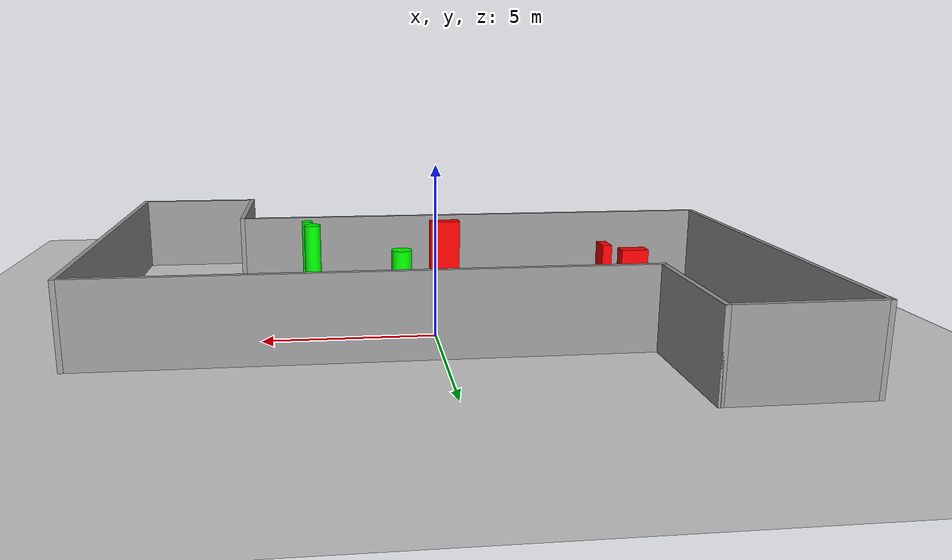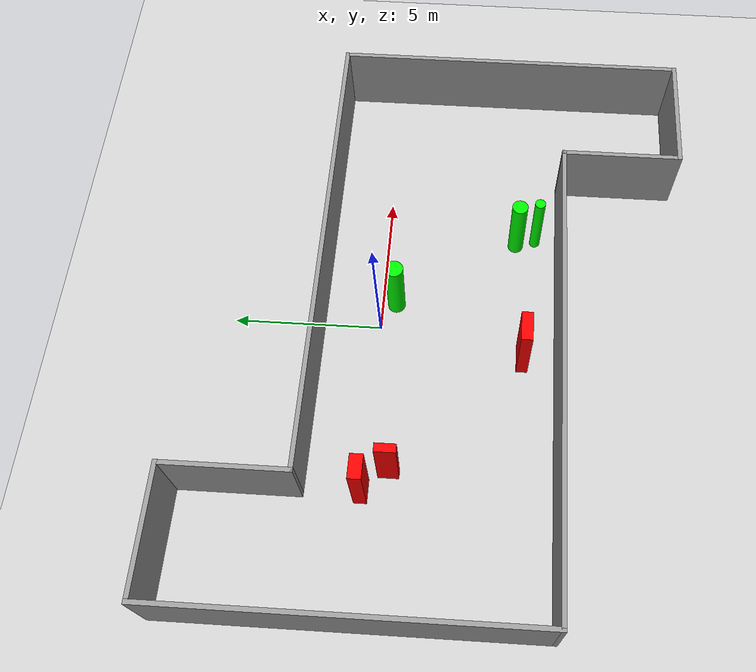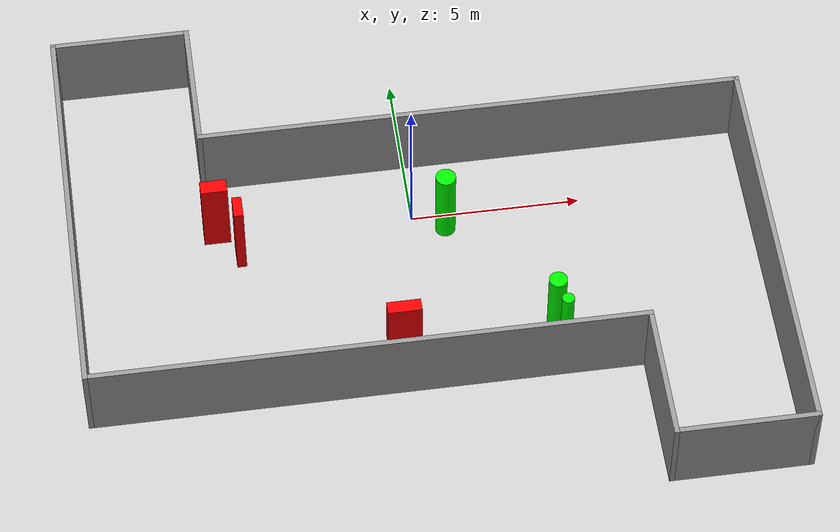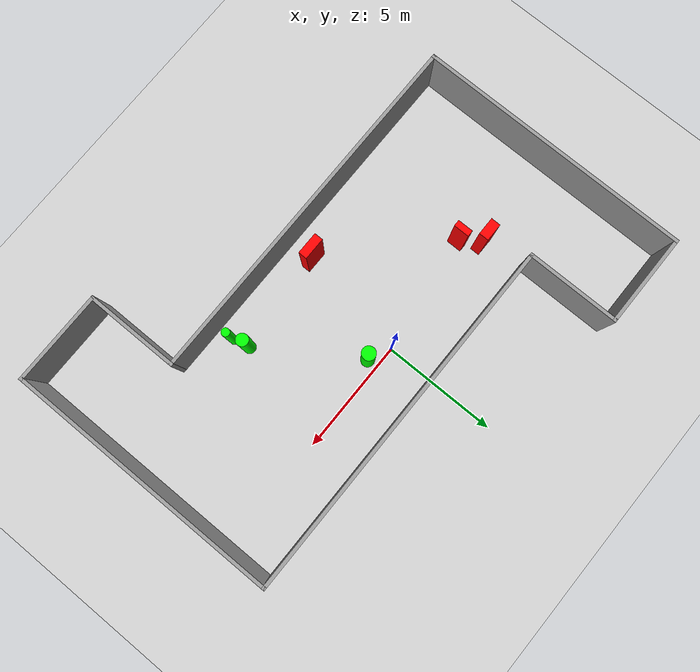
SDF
<sdf version="1.7">
 <world name="default">
  <light name="sun" type="directional">
   <pose>0 0 10 0 -0 0</pose>
   <diffuse>0.8 0.8 0.8 1</diffuse>
   <specular>0.2 0.2 0.2 1</specular>
   <attenuation>
    <range>1000</range>
    <constant>0.9</constant>
    <linear>0.01</linear>
    <quadratic>0.001</quadratic>
   </attenuation>
   <direction>-0.5 0.1 -0.9</direction>
   <spot><inner_angle>0</inner_angle><outer_angle>0</outer_angle><falloff>0</falloff></spot>
  </light>
  <model name="ground_plane">
   <static>1</static>
   <link name="link">
    <collision name="collision">
     <geometry><plane><normal>0 0 1</normal><size>100 100</size></plane></geometry>
     <surface>
      <contact><collide_bitmask>65535</collide_bitmask></contact>
      <friction><ode><mu>100</mu><mu2>50</mu2></ode></friction>
     </surface>
    </collision>
    <visual name="visual">
     <cast_shadows>0</cast_shadows>
     <geometry><plane><normal>0 0 1</normal><size>100 100</size></plane></geometry>
     <material>
      <script><uri>file://media/materials/scripts/gazebo.material</uri><name>Gazebo/Grey</name></script>
     </material>
    </visual>
   </link>
  </model>
  <gravity>0 0 -9.8</gravity>
  <magnetic_field>6e-06 2.3e-05 -4.2e-05</magnetic_field>
  <atmosphere type="adiabatic"/>
  <physics type="ode">
   <max_step_size>0.001</max_step_size>
   <real_time_factor>1</real_time_factor>
   <real_time_update_rate>1000</real_time_update_rate>
  </physics>
  <scene><ambient>0.4 0.4 0.4 1</ambient><background>0.7 0.7 0.7 1</background><shadows>1</shadows></scene>
  <spherical_coordinates>
   <surface_model>EARTH_WGS84</surface_model>
   <latitude_deg>0</latitude_deg>
   <longitude_deg>0</longitude_deg>
   <elevation>0</elevation>
   <heading_deg>0</heading_deg>
  </spherical_coordinates>
  <model name="my_base_walls">
   <link name="Wall_13">
    <collision name="Wall_13_Collision">
     <geometry><box><size>12.15 0.15 2.5</size></box></geometry>
     <pose>0 0 1.25 0 -0 0</pose>
    </collision>
    <visual name="Wall_13_Visual">
     <pose>0 0 1.25 0 -0 0</pose>
     <geometry><box><size>12.15 0.15 2.5</size></box></geometry>
     <material>
      <script><uri>file://media/materials/scripts/gazebo.material</uri><name>Gazebo/Grey</name></script>
      <ambient>1 1 1 1</ambient>
     </material>
     <meta><layer>0</layer></meta>
    </visual>
    <pose>10 -2 0 0 -0 1.5708</pose>
   </link>
   <link name="Wall_15">
    <collision name="Wall_15_Collision">
     <geometry><box><size>16.15 0.15 2.5</size></box></geometry>
     <pose>0 0 1.25 0 -0 0</pose>
    </collision>
    <visual name="Wall_15_Visual">
     <pose>0 0 1.25 0 -0 0</pose>
     <geometry><box><size>16.15 0.15 2.5</size></box></geometry>
     <material>
      <script><uri>file://media/materials/scripts/gazebo.material</uri><name>Gazebo/Grey</name></script>
      <ambient>1 1 1 1</ambient>
     </material>
     <meta><layer>0</layer></meta>
    </visual>
    <pose>2 4 0 0 -0 3.14159</pose>
   </link>
   <link name="Wall_17">
    <collision name="Wall_17_Collision">
     <geometry><box><size>4.15 0.15 2.5</size></box></geometry>
     <pose>0 0 1.25 0 -0 0</pose>
    </collision>
    <visual name="Wall_17_Visual">
     <pose>0 0 1.25 0 -0 0</pose>
     <geometry><box><size>4.15 0.15 2.5</size></box></geometry>
     <material>
      <script><uri>file://media/materials/scripts/gazebo.material</uri><name>Gazebo/Grey</name></script>
      <ambient>1 1 1 1</ambient>
     </material>
     <meta><layer>0</layer></meta>
    </visual>
    <pose>6 -6 0 0 -0 -1.5708</pose>
   </link>
   <link name="Wall_19">
    <collision name="Wall_19_Collision">
     <geometry><box><size>12.15 0.15 2.5</size></box></geometry>
     <pose>0 0 1.25 0 -0 0</pose>
    </collision>
    <visual name="Wall_19_Visual">
     <pose>0 0 1.25 0 -0 0</pose>
     <geometry><box><size>12.15 0.15 2.5</size></box></geometry>
     <material>
      <script><uri>file://media/materials/scripts/gazebo.material</uri><name>Gazebo/Grey</name></script>
      <ambient>1 1 1 1</ambient>
     </material>
     <meta><layer>0</layer></meta>
    </visual>
    <pose>-10 2 0 0 -0 1.5708</pose>
   </link>
   <link name="Wall_21">
    <collision name="Wall_21_Collision">
     <geometry><box><size>4.15 0.15 2.5</size></box></geometry>
     <pose>0 0 1.25 0 -0 0</pose>
    </collision>
    <visual name="Wall_21_Visual">
     <pose>0 0 1.25 0 -0 0</pose>
     <geometry><box><size>4.15 0.15 2.5</size></box></geometry>
     <material>
      <script><uri>file://media/materials/scripts/gazebo.material</uri><name>Gazebo/Grey</name></script>
      <ambient>1 1 1 1</ambient>
     </material>
     <meta><layer>0</layer></meta>
    </visual>
    <pose>-8 8 0 0 -0 0</pose>
   </link>
   <link name="Wall_23">
    <collision name="Wall_23_Collision">
     <geometry><box><size>4.15 0.15 2.5</size></box></geometry>
     <pose>0 0 1.25 0 -0 0</pose>
    </collision>
    <visual name="Wall_23_Visual">
     <pose>0 0 1.25 0 -0 0</pose>
     <geometry><box><size>4.15 0.15 2.5</size></box></geometry>
     <material>
      <script><uri>file://media/materials/scripts/gazebo.material</uri><name>Gazebo/Grey</name></script>
      <ambient>1 1 1 1</ambient>
     </material>
     <meta><layer>0</layer></meta>
    </visual>
    <pose>-6 6 0 0 -0 -1.5708</pose>
   </link>
   <link name="Wall_25">
    <collision name="Wall_25_Collision">
     <geometry><box><size>4.15 0.15 2.5</size></box></geometry>
     <pose>0 0 1.25 0 -0 0</pose>
    </collision>
    <visual name="Wall_25_Visual">
     <pose>0 0 1.25 0 -0 0</pose>
     <geometry><box><size>4.15 0.15 2.5</size></box></geometry>
     <material>
      <script><uri>file://media/materials/scripts/gazebo.material</uri><name>Gazebo/Grey</name></script>
      <ambient>1 1 1 1</ambient>
     </material>
     <meta><layer>0</layer></meta>
    </visual>
    <pose>8 -8 0 0 -0 0</pose>
   </link>
   <link name="Wall_9">
    <collision name="Wall_9_Collision">
     <geometry><box><size>16.15 0.15 2.5</size></box></geometry>
     <pose>0 0 1.25 0 -0 0</pose>
    </collision>
    <visual name="Wall_9_Visual">
     <pose>0 0 1.25 0 -0 0</pose>
     <geometry><box><size>16.15 0.15 2.5</size></box></geometry>
     <material>
      <script><uri>file://media/materials/scripts/gazebo.material</uri><name>Gazebo/Grey</name></script>
      <ambient>1 1 1 1</ambient>
     </material>
     <meta><layer>0</layer></meta>
    </visual>
    <pose>-2 -4 0 0 -0 3.14159</pose>
   </link>
   <static>1</static>
   <pose>-0 -2 0 0 -0 0</pose>
  </model>
  <model name="cylinder1">
   <static>1</static>
   <link name="link">
    <inertial>
     <mass>1</mass>
     <inertia><ixx>0.5</ixx><ixy>0</ixy><ixz>0</ixz><iyy>0.5</iyy><iyz>0</iyz><izz>1</izz></inertia>
    </inertial>
    <collision name="collision">
     <geometry><cylinder><radius>0.26535359061442065</radius><length>2.5</length></cylinder></geometry>
    </collision>
    <visual name="visual">
     <geometry><cylinder><radius>0.26535359061442065</radius><length>2.5</length></cylinder></geometry>
     <material>
      <ambient>0 1 0 1</ambient>
      <diffuse>0 1 0 1</diffuse>
      <specular>0.1 0.1 0.1 1</specular>
      <emissive>0 0 0 0</emissive>
     </material>
    </visual>
   </link>
   <pose>3.5961823124980796 -4.516716477466756 1.25 0 0 0</pose>
  </model>
  <model name="cylinder2">
   <static>1</static>
   <link name="link">
    <inertial>
     <mass>1</mass>
     <inertia><ixx>0.5</ixx><ixy>0</ixy><ixz>0</ixz><iyy>0.5</iyy><iyz>0</iyz><izz>1</izz></inertia>
    </inertial>
    <collision name="collision">
     <geometry><cylinder><radius>0.17823294932586822</radius><length>2.5</length></cylinder></geometry>
    </collision>
    <visual name="visual">
     <geometry><cylinder><radius>0.17823294932586822</radius><length>2.5</length></cylinder></geometry>
     <material>
      <ambient>0 1 0 1</ambient>
      <diffuse>0 1 0 1</diffuse>
      <specular>0.1 0.1 0.1 1</specular>
      <emissive>0 0 0 0</emissive>
     </material>
    </visual>
   </link>
   <pose>3.7743610117644533 -5.194360397641922 1.25 0 0 0</pose>
  </model>
  <model name="cylinder3">
   <static>1</static>
   <link name="link">
    <inertial>
     <mass>1</mass>
     <inertia><ixx>0.5</ixx><ixy>0</ixy><ixz>0</ixz><iyy>0.5</iyy><iyz>0</iyz><izz>1</izz></inertia>
    </inertial>
    <collision name="collision">
     <geometry><cylinder><radius>0.29604002899384296</radius><length>2.5</length></cylinder></geometry>
    </collision>
    <visual name="visual">
     <geometry><cylinder><radius>0.29604002899384296</radius><length>2.5</length></cylinder></geometry>
     <material>
      <ambient>0 1 0 1</ambient>
      <diffuse>0 1 0 1</diffuse>
      <specular>0.1 0.1 0.1 1</specular>
      <emissive>0 0 0 0</emissive>
     </material>
    </visual>
   </link>
   <pose>0.9447916292189262 -0.4633095340188502 1.25 0 0 0</pose>
  </model>
  <model name="box1">
   <static>1</static>
   <link name="link">
    <inertial>
     <mass>1</mass>
     <inertia><ixx>0.083</ixx><ixy>0</ixy><ixz>0</ixz><iyy>0.083</iyy><iyz>0</iyz><izz>0.083</izz></inertia>
    </inertial>
    <collision name="collision">
     <geometry><box><size>0.7791860311664704 0.42427393485460835 2.5</size></box></geometry>
    </collision>
    <visual name="visual">
     <geometry><box><size>0.7791860311664704 0.42427393485460835 2.5</size></box></geometry>
     <material>
      <ambient>1 0 0 1</ambient>
      <diffuse>1 0 0 1</diffuse>
      <specular>0.1 0.1 0.1 1</specular>
      <emissive>0 0 0 0</emissive>
     </material>
    </visual>
    <sensor name="my_contact" type="contact">
     <contact><collision>box_collision</collision><topic>__default_topic__</topic></contact>
    </sensor>
   </link>
   <pose>-5.780867031022634 0.11626359628412253 1.25 0 0 0</pose>
  </model>
  <model name="box2">
   <static>1</static>
   <link name="link">
    <inertial>
     <mass>1</mass>
     <inertia><ixx>0.083</ixx><ixy>0</ixy><ixz>0</ixz><iyy>0.083</iyy><iyz>0</iyz><izz>0.083</izz></inertia>
    </inertial>
    <collision name="collision">
     <geometry><box><size>0.27768427237998705 0.6803116307445748 2.5</size></box></geometry>
    </collision>
    <visual name="visual">
     <geometry><box><size>0.27768427237998705 0.6803116307445748 2.5</size></box></geometry>
     <material>
      <ambient>1 0 0 1</ambient>
      <diffuse>1 0 0 1</diffuse>
      <specular>0.1 0.1 0.1 1</specular>
      <emissive>0 0 0 0</emissive>
     </material>
    </visual>
    <sensor name="my_contact" type="contact">
     <contact><collision>box_collision</collision><topic>__default_topic__</topic></contact>
    </sensor>
   </link>
   <pose>-5.163350775603204 -0.7009052124722626 1.25 0 0 0</pose>
  </model>
  <model name="box3">
   <static>1</static>
   <link name="link">
    <inertial>
     <mass>1</mass>
     <inertia><ixx>0.083</ixx><ixy>0</ixy><ixz>0</ixz><iyy>0.083</iyy><iyz>0</iyz><izz>0.083</izz></inertia>
    </inertial>
    <collision name="collision">
     <geometry><box><size>0.9829758100000645 0.37881272754435547 2.5</size></box></geometry>
    </collision>
    <visual name="visual">
     <geometry><box><size>0.9829758100000645 0.37881272754435547 2.5</size></box></geometry>
     <material>
      <ambient>1 0 0 1</ambient>
      <diffuse>1 0 0 1</diffuse>
      <specular>0.1 0.1 0.1 1</specular>
      <emissive>0 0 0 0</emissive>
     </material>
    </visual>
    <sensor name="my_contact" type="contact">
     <contact><collision>box_collision</collision><topic>__default_topic__</topic></contact>
    </sensor>
   </link>
   <pose>-0.8636773761903438 -4.838757630378426 1.25 0 0 0</pose>
  </model>
 </world>
</sdf>
